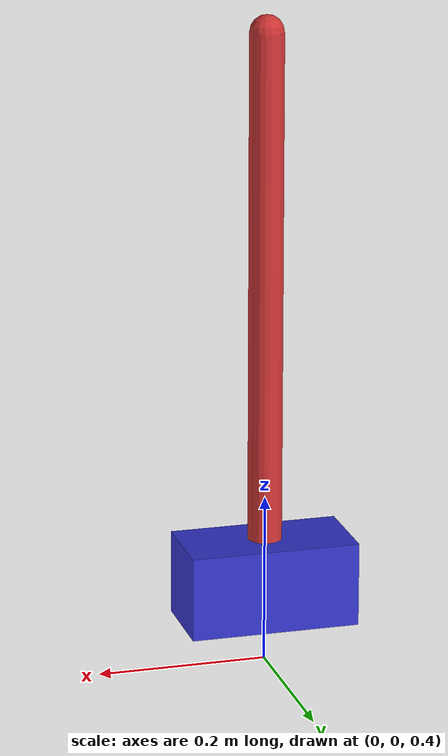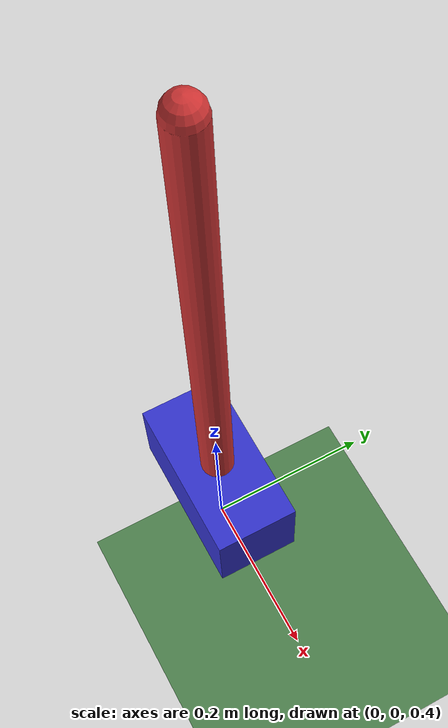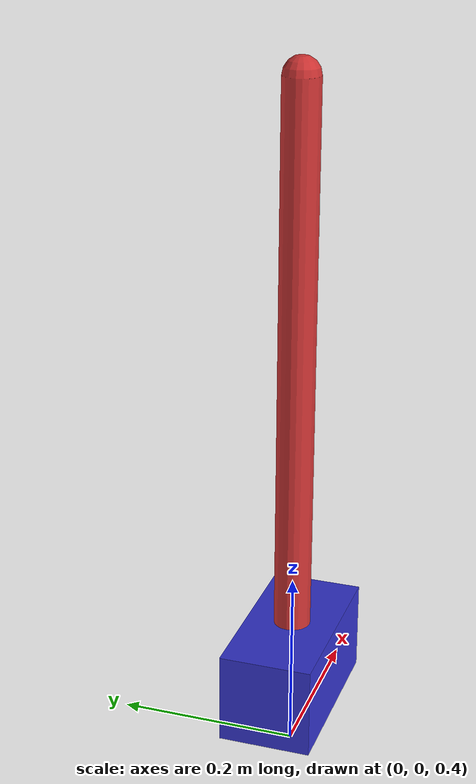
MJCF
<mujoco model="cartpole">
  <compiler angle="radian"/>
  <option timestep="0.005" gravity="0 0 -9.81"/>
  <worldbody>
    <geom name="floor" type="plane" size="5 5 0.1" rgba="0.3 0.5 0.3 1"/>
    <body name="cart" pos="0 0 0.5">
      <joint name="slider" type="slide" axis="1 0 0" range="-2 2"/>
      <geom name="cart_g" type="box" size="0.1 0.05 0.05" mass="1" rgba="0.2 0.2 0.8 1"/>
      <body name="pole" pos="0 0 0.05">
        <joint name="hinge" type="hinge" axis="0 1 0"/>
        <geom name="pole_g" type="capsule" fromto="0 0 0 0 0 0.6" size="0.02" mass="0.3" rgba="0.8 0.2 0.2 1"/>
      </body>
    </body>
  </worldbody>
  <actuator><motor joint="slider" gear="100"/></actuator>
</mujoco>
